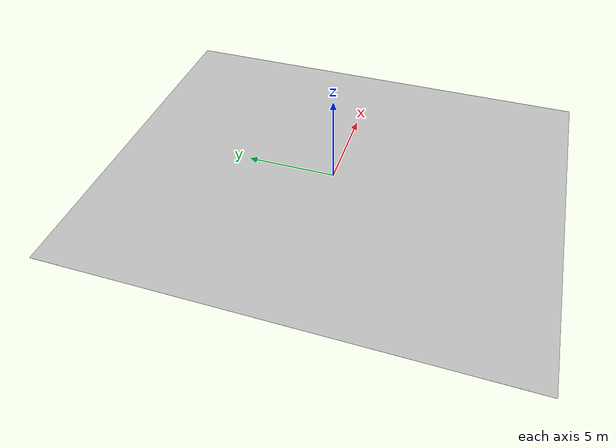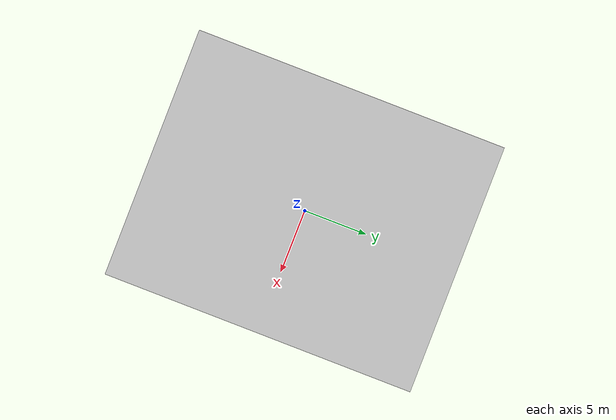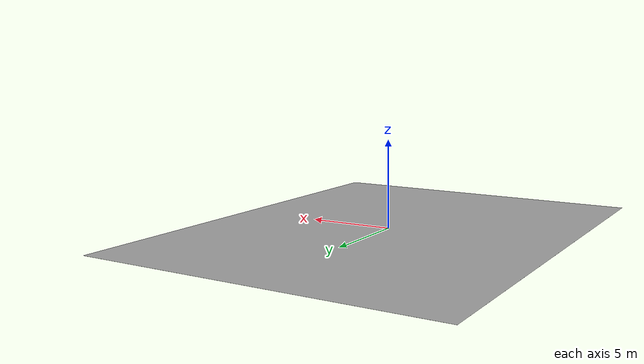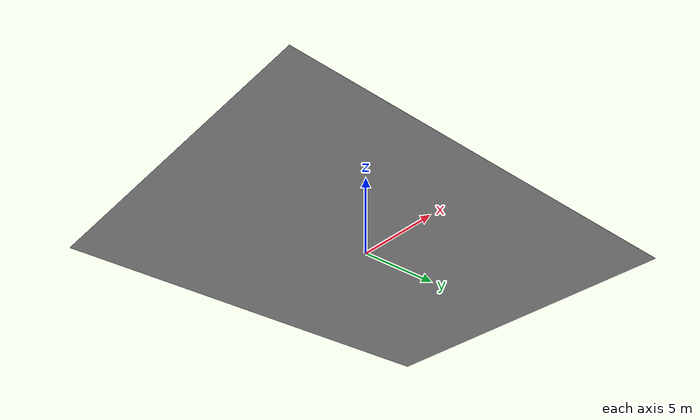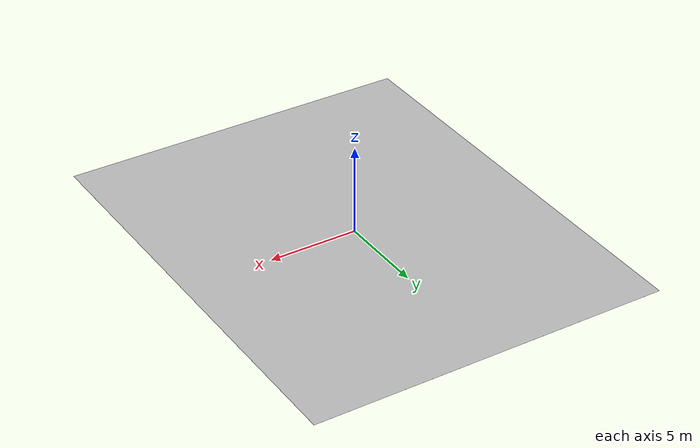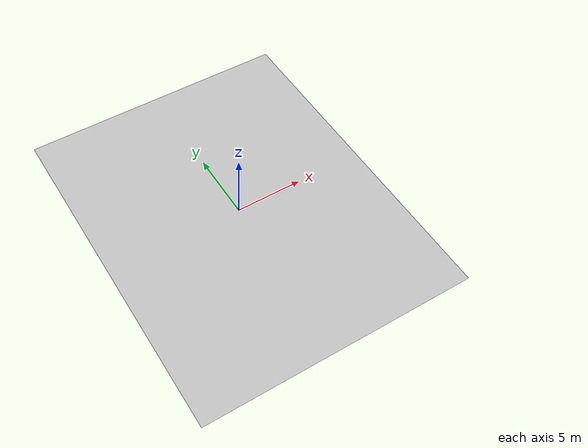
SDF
<?xml version="1.0" ?>
<sdf version="1.4">
  <model name="marker_0">
    <static>0</static>
    <link name="marker">
      <inertial>
        <mass>0.1</mass>
        <inertia>
          <ixx>0.000000</ixx>
          <ixy>0.000000</ixy>
          <ixz>0.000000</ixz>
          <iyy>0.000000</iyy>
          <iyz>0.000000</iyz>
          <izz>0.000000</izz>
        </inertia>
      </inertial>
      <visual name="visual">
        <geometry>
          <box>
            <size>20 25 0.001</size>
            <!-- SIZE OF THE MARKER + MARGIN -->
          </box>
        </geometry>
        <material>
          <script>
	        <uri>model://materials/scripts</uri>
	        <uri>model://materials/textures</uri>
            <name>marker_0</name>
          </script>
        </material>
      </visual>
      <collision name="collision">
        <geometry>
          <box>
            <size>0.1 0.1 0.002</size>
            <!-- SIZE OF THE MARKER + MARGIN -->
          </box>
        </geometry>
        <surface>
          <bounce />
          <friction>
            <ode />
          </friction>
          <contact>
            <ode />
          </contact>
        </surface>
      </collision>
      <self_collide>1</self_collide>
      <kinematic>0</kinematic>
      <gravity>1</gravity>
    </link>
  </model>
</sdf>
